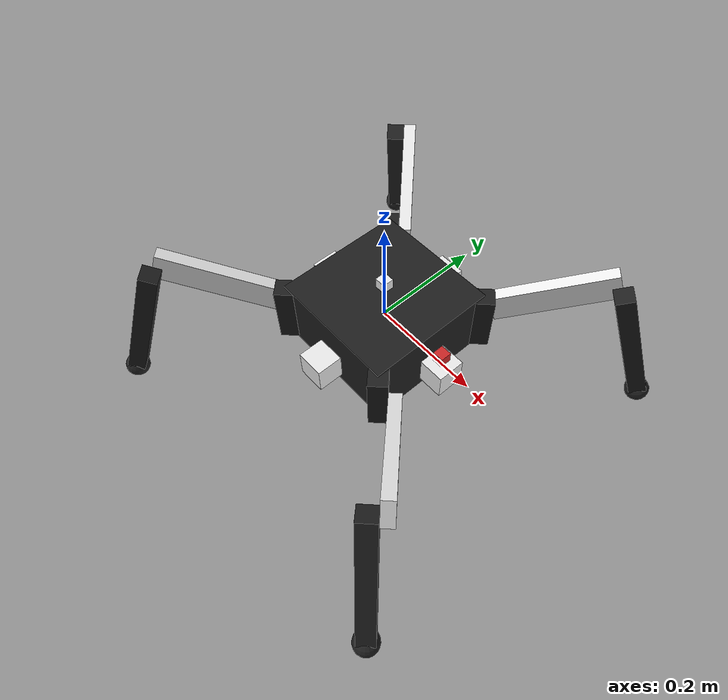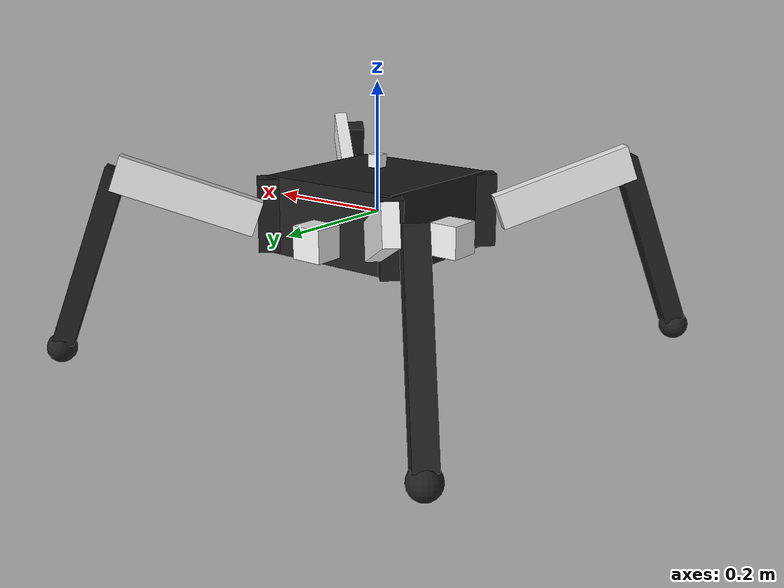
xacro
<?xml version="1.0"?>

<robot name="$(arg ugv_name)" xmlns:xacro="http://ros.org/wiki/xacro">
    <xacro:include filename="$(find simulator)/urdf/component_snippets.xacro" />
    <!-- Instantiate firefly "mechanics" -->
    <xacro:include filename="$(find simulator)/urdf/quadruped.xacro" />

    <xacro:camera_macro
    namespace=""
    parent_link="base_link"
    camera_suffix="front"
    frame_rate="30"
    horizontal_fov="1.57"
    image_width="640"
    image_height="480"
    image_format="R8G8B8"
    min_distance="0.1"
    max_distance="0"
    noise_mean="0.0"
    noise_stddev="0.0"
    enable_visual="true">
    <box size="0.02 0.02 0.02"/>
    <origin xyz="0.14 0.0 0.02" rpy="0.0 0.0 0.0" />
    </xacro:camera_macro>

    <xacro:imu_macro
    namespace=""
    imu_suffix=""
    parent_link="base_link"
    imu_size="0.02"
    imu_mass="0.03"
    imu_topic="imu">
    <origin xyz="0.0 0.0 0.08" rpy="0.0 0.0 0.0"/>
    </xacro:imu_macro>

    <xacro:lidar_macro
    namespace=""
    lidar_suffix="front"
    parent_link="base_link"
    lidar_size="0.05"
    lidar_mass="0.03"
    lidar_topic="lidar/front">
    <origin xyz="0.14 0 -0.02" rpy="0.0 0.0 0.0"/>
    </xacro:lidar_macro>

    <xacro:lidar_macro
    namespace=""
    lidar_suffix="left"
    parent_link="base_link"
    lidar_size="0.05"
    lidar_mass="0.03"
    lidar_topic="lidar/left">
    <origin xyz="0.0 0.14 -0.02" rpy="0.0 0.0 1.57"/>
    </xacro:lidar_macro>

    <xacro:lidar_macro
    namespace=""
    lidar_suffix="back"
    parent_link="base_link"
    lidar_size="0.05"
    lidar_mass="0.03"
    lidar_topic="lidar/back">
    <origin xyz="-0.14 0.0 -0.02" rpy="0.0 0.0 3.14"/>
    </xacro:lidar_macro>

    <xacro:lidar_macro
    namespace=""
    lidar_suffix="right"
    parent_link="base_link"
    lidar_size="0.05"
    lidar_mass="0.03"
    lidar_topic="lidar/right">
    <origin xyz="0.0 -0.14 -0.02" rpy="0.0 0.0 -1.57"/>
    </xacro:lidar_macro>

</robot>

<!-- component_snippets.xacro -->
<robot xmlns:xacro="http://ros.org/wiki/xacro">
    <xacro:property name="pi" value="3.14159265359" />

    <xacro:macro name="camera_macro"
    params="namespace parent_link camera_suffix frame_rate
      horizontal_fov image_width image_height image_format min_distance
      max_distance noise_mean noise_stddev enable_visual *geometry *origin">
    <link name="${namespace}/camera_${camera_suffix}_link">
      <collision>
        <origin xyz="0 0 0" rpy="0 0 0" />
        <geometry>
          <xacro:insert_block name="geometry" />
        </geometry>
      </collision>
      <xacro:if value="${enable_visual}">
        <visual>
          <origin xyz="0 0 0" rpy="0 ${pi/2} 0" />
          <geometry>
            <xacro:insert_block name="geometry" />
          </geometry>
          <material name="red" />
        </visual>
      </xacro:if>
      <inertial>
        <mass value="1e-5" />
        <origin xyz="0 0 0" rpy="0 0 0" />
        <inertia ixx="1e-6" ixy="0" ixz="0" iyy="1e-6" iyz="0" izz="1e-6" />
      </inertial>
    </link>
    <joint name="${namespace}/camera_${camera_suffix}_joint" type="fixed">
      <xacro:insert_block name="origin" />
      <parent link="${parent_link}" />
      <child link="${namespace}/camera_${camera_suffix}_link" />
    </joint>
    <link name="${namespace}/camera_${camera_suffix}_optical_link" />
    <joint name="${namespace}/camera_${camera_suffix}_optical_joint" type="fixed" >
      <origin xyz="0 0 0" rpy="${-pi/2} 0 ${-pi/2}" />
      <parent link="${namespace}/camera_${camera_suffix}_link" />
      <child link="${namespace}/camera_${camera_suffix}_optical_link" />
    </joint>
    <gazebo reference="${namespace}/camera_${camera_suffix}_link">
      <sensor type="camera" name="${namespace}_camera_${camera_suffix}">
        <update_rate>${frame_rate}</update_rate>
        <camera name="head">
          <horizontal_fov>${horizontal_fov}</horizontal_fov>
          <image>
            <width>${image_width}</width>
            <height>${image_height}</height>
            <format>${image_format}</format>
          </image>
          <clip>
            <near>${min_distance}</near>
            <far>${max_distance}</far>
          </clip>
          <noise>
            <type>gaussian</type>
            <!-- Noise is sampled independently per pixel on each frame.
                 That pixel's noise value is added to each of its color
                 channels, which at that point lie in the range [0,1]. -->
            <mean>${noise_mean}</mean>
            <stddev>${noise_stddev}</stddev>
          </noise>
        </camera>
        <plugin name="${namespace}_camera_${camera_suffix}_controller" filename="libgazebo_ros_camera.so">
          <robotNamespace>${namespace}</robotNamespace>
          <alwaysOn>true</alwaysOn>
          <updateRate>${frame_rate}</updateRate>
          <cameraName>camera_${camera_suffix}</cameraName>
          <imageTopicName>image_raw</imageTopicName>
          <cameraInfoTopicName>camera_info</cameraInfoTopicName>
          <frameName>camera_${camera_suffix}_link</frameName>
          <hackBaseline>0.0</hackBaseline>
          <distortionK1>0.0</distortionK1>
          <distortionK2>0.0</distortionK2>
          <distortionK3>0.0</distortionK3>
          <distortionT1>0.0</distortionT1>
          <distortionT2>0.0</distortionT2>
        </plugin>
      </sensor>
    </gazebo>
    </xacro:macro>

    <xacro:macro name="imu_macro"
    params="namespace imu_suffix parent_link imu_size imu_mass imu_topic *origin">
        <link name="${namespace}/imu${imu_suffix}_link">
            <visual>
                <geometry>
                    <box size="${imu_size} ${imu_size} ${imu_size}"/>
                </geometry>
                <material name="white"/>
                </visual>
                <collision>
                <geometry>
                    <box size="${imu_size} ${imu_size} ${imu_size}"/>
                </geometry>
                </collision>
                <xacro:box_inertial mass="${imu_mass}" width="${imu_size}" depth="${imu_size}"/>
        </link>
        <joint name="${namespace}/imu${imu_suffix}_joint" type="fixed">
            <xacro:insert_block name="origin" />
            <parent link="${parent_link}" />
            <child link="${namespace}/imu${imu_suffix}_link" />
        </joint>
        <gazebo reference="${namespace}/imu${imu_suffix}_link">
            <material>Gazebo/White</material>
            <gravity>true</gravity>
            <sensor name="imu_sensor" type="imu">
            <always_on>true</always_on>
            <update_rate>100</update_rate>
            <visualize>true</visualize>
            <topic>__default_topic__</topic>
            <plugin filename="libgazebo_ros_imu_sensor.so" name="imu_plugin">
                <topicName>${imu_topic}</topicName>
                <bodyName>${namespace}/imu${imu_suffix}_link</bodyName>
                <updateRateHZ>100.0</updateRateHZ>
                <gaussianNoise>0.0</gaussianNoise>
                <xyzOffset>0 0 0</xyzOffset>
                <rpyOffset>0 0 0</rpyOffset>
                <frameName>${namespace}/imu${imu_suffix}_link</frameName>
            </plugin>
            <pose>0 0 0 0 0 0</pose>
            </sensor>
        </gazebo>
        <gazebo reference="${namespace}/imu${imu_suffix}_joint">
            <provideFeedback>true</provideFeedback>
            <disableFixedJointLumping>true</disableFixedJointLumping>
        </gazebo>
    </xacro:macro>

    <xacro:macro name="lidar_macro"
    params="namespace lidar_suffix parent_link lidar_size lidar_mass lidar_topic *origin">
    <link name="${namespace}/lidar_${lidar_suffix}_link">
      <visual>
          <geometry>
              <box size="${lidar_size} ${lidar_size} ${lidar_size}"/>
          </geometry>
          <material name="white"/>
          </visual>
          <collision>
          <geometry>
              <box size="${lidar_size} ${lidar_size} ${lidar_size}"/>
          </geometry>
          </collision>
          <xacro:box_inertial mass="${lidar_mass}" width="${lidar_size}" depth="${lidar_size}"/>
    </link>
    <joint name="${namespace}/lidar_${lidar_suffix}_joint" type="fixed">
      <xacro:insert_block name="origin" />
      <parent link="${parent_link}" />
      <child link="${namespace}/lidar_${lidar_suffix}_link" />
    </joint>
    <gazebo reference="${namespace}/lidar_${lidar_suffix}_link">
      <sensor type="gpu_ray" name="hokuyo_sensor">
        <pose>0 0 0 0 0 0</pose>
        <visualize>false</visualize>
        <update_rate>40</update_rate>
        <material>Gazebo/White</material>
        <gravity>true</gravity>
        <topic>__default_topic__</topic>
        <ray>
          <scan>
            <horizontal>
              <samples>720</samples>
              <resolution>1</resolution>
              <min_angle>-0.86</min_angle>
              <max_angle>0.86</max_angle>
            </horizontal>
          </scan>
          <range>
            <min>0.10</min>
            <max>10.0</max>
            <resolution>0.01</resolution>
          </range>
          <noise>
            <type>gaussian</type>
            <mean>0.0</mean>
            <stddev>0.01</stddev>
          </noise>
        </ray>
        <plugin name="gazebo_ros_head_hokuyo_controller" filename="libgazebo_ros_gpu_laser.so">
          <topicName>${lidar_topic}</topicName>
          <frameName>${namespace}/lidar_${lidar_suffix}_link</frameName>
        </plugin>
      </sensor>
    </gazebo>
    <gazebo reference="${namespace}/lidar_${lidar_suffix}_joint">
      <provideFeedback>true</provideFeedback>
      <disableFixedJointLumping>true</disableFixedJointLumping>
    </gazebo>
    </xacro:macro>

</robot>

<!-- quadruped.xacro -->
<robot name="$(arg namespace)" xmlns:xacro="http://ros.org/wiki/xacro">
    <xacro:property name="namespace" value="$(arg namespace)" />
    <gazebo>
        <plugin name="gazebo_ros_control" filename="libgazebo_ros_control.so"/>
    </gazebo>

    <xacro:property name="scaling_factor" value="2.2" />
    <!--height:z width:y width:x -->
    <xacro:property name="body_width" value="${scaling_factor*0.108}" />
    <xacro:property name="body_height" value="${scaling_factor*0.055}" />
    <xacro:property name="body_mass" value="${(scaling_factor**3)*0.4}" />

    <xacro:property name="imu_size" value="${scaling_factor*0.02}" />
    <xacro:property name="imu_mass" value="${(scaling_factor**3)*0.05}" />

    <!--height:z width:y depth:x -->
    <xacro:property name="leg1_height" value="${scaling_factor*0.13}" />
    <xacro:property name="leg1_width" value="${scaling_factor*0.015}" />
    <xacro:property name="leg1_depth" value="${scaling_factor*0.015}" />
    <xacro:property name="leg1_mass" value="${(scaling_factor**3)*0.8}" />
    <xacro:property name="leg1_joint_low" value="${-pi*2.0/18.0}" />
    <xacro:property name="leg1_joint_high" value="${pi*2.0/18.0}" />

    <xacro:property name="leg2_height" value="${scaling_factor*0.025}" />
    <xacro:property name="leg2_width" value="${scaling_factor*0.01}" />
    <xacro:property name="leg2_depth" value="${scaling_factor*0.1}" />
    <xacro:property name="leg2_mass" value="${(scaling_factor**3)*0.05}" />
    <xacro:property name="leg2_joint_low" value="${-pi*2.0/18.0}" />
    <xacro:property name="leg2_joint_high" value="${pi*2.0/18.0}" />
    <xacro:property name="leg2_init_pitch" value="${pi*16.0/18.0}" />

    <xacro:property name="leg3_height" value="${scaling_factor*0.052}" />
    <xacro:property name="leg3_width" value="${scaling_factor*0.015}" />
    <xacro:property name="leg3_depth" value="${scaling_factor*0.015}" />
    <xacro:property name="leg3_mass" value="${(scaling_factor**3)*0.1}" />
    <xacro:property name="leg3_joint_low" value="${-pi*2.0/18.0}" />
    <xacro:property name="leg3_joint_high" value="${pi*2.0/18.0}" />

    <xacro:property name="leg_tip_mass" value="${(scaling_factor**3)*0.02}" />

    <xacro:property name="servo_vel" value="4.0" />
    <xacro:property name="servo_effort_limit" value="50.0" />

    <xacro:macro name="box_inertial" params="mass width depth">
        <inertial>
            <mass value="${mass}" />
            <inertia ixx="${mass*(width*width+depth*depth)/12.0}" ixy="0.0" ixz="0.0" iyy="${mass*(width*width+depth*depth)/12.0}" iyz="0.0" izz="${mass*(width*width+depth*depth)/12.0}" />
        </inertial>
    </xacro:macro>

    <xacro:macro name="sphere_inertial" params="mass radius">
        <inertial>
            <mass value="${mass}" />
            <inertia ixx="0.1" ixy="0.0" ixz="0.0" iyy="0.1" iyz="0.0" izz="0.1"/>
        </inertial>
    </xacro:macro>

    <link name="dummy_link">
        <visual>
        <geometry>
            <box size="0.01 0.01 0.01"/>
        </geometry>
        <material name="black"/>
        </visual>
        <inertial>
        <mass value="0.01" />
        <inertia ixx="0.00001" ixy="0.0" ixz="0.0" iyy="0.00001" iyz="0.0" izz="0.00001" />
        </inertial>
        <gazebo reference="dummy_link">
        </gazebo>
    </link>

    <link name="base_link">
        <visual>
        <geometry>
            <box size="${body_width} ${body_width} ${body_height}"/>
        </geometry>
        <material name="black"/>
        </visual>
        <collision>
        <geometry>
            <box size="${body_width} ${body_width} ${body_height}"/>
        </geometry>
        </collision>
        <xacro:box_inertial mass="${body_mass}" width="${body_width}" depth="${body_width}"/>
    </link>
    <joint name="dummy_base_joint" type="fixed">
        <parent link="dummy_link"/>
        <child link="base_link"/>
        <origin xyz="0 0 0" rpy="0 0 0"/>
    </joint>
    <gazebo reference="base_link">
        <mu1>100000.0</mu1>
        <mu2>100000.0</mu2>
        <material>Gazebo/Black</material>
    </gazebo>
    <gazebo reference="dummy_base_joint">
        <provideFeedback>true</provideFeedback>
        <disableFixedJointLumping>true</disableFixedJointLumping>
    </gazebo>

    <xacro:macro name="leg_tip" params="prefix suffix reflect_right">
        <link name="${prefix}_${suffix}_leg_tip">
        <visual>
            <origin xyz="0 0 0" rpy="0 0 0" />
            <geometry>
            <sphere radius="${leg1_depth*1.41/2.0}"/>
            </geometry>
            <material name="black"/>
        </visual>
        <collision>
            <origin xyz="0 0 0" rpy="0 0 0" />
            <geometry>
            <sphere radius="${leg1_depth/2.0}"/>
            </geometry>
        </collision>
        <xacro:sphere_inertial mass="${leg_tip_mass}" radius="${leg1_depth/2.0}"/>
        </link>
        <joint name="${prefix}_${suffix}_leg_tip_joint" type="fixed">
        <parent link="${prefix}_${suffix}_leg1"/>
        <child link="${prefix}_${suffix}_leg_tip"/>
        <origin xyz="0 ${-reflect_right*leg1_width/2.0} ${-leg1_height-leg1_depth*1.41/4.0}" rpy="0 0 0"/>
        </joint>
        <gazebo reference="${prefix}_${suffix}_leg_tip">
        <minDepth>0.0002</minDepth>
        <collision name="${prefix}_${suffix}_leg_tip_collision_1">
            <geometry>
            <sphere>
                <radius>${leg1_depth/2.0}</radius>
            </sphere>
            </geometry>
            <surface>
            <friction>
                <ode>
                <mu>100000.0</mu>
                <mu2>100000.0</mu2>
                </ode>
                <torsional>
                <coefficient>1000000</coefficient>
                <use_patch_radius>true</use_patch_radius>
                <surface_radius>${leg1_depth/2.0}</surface_radius>
                <patch_radius>${leg1_depth/2.0}</patch_radius>
                </torsional>
            </friction>
            </surface>
        </collision>
        <material>Gazebo/Black</material>
        </gazebo>
        <gazebo reference="${prefix}_${suffix}_leg_tip_joint">
        <provideFeedback>true</provideFeedback>
        <disableFixedJointLumping>true</disableFixedJointLumping>
        </gazebo>
    </xacro:macro>

    <xacro:macro name="leg1" params="prefix suffix reflect_right">
        <link name="${prefix}_${suffix}_leg1">
        <visual>
            <origin xyz="0 ${-reflect_right*leg1_width/2.0} ${-leg1_height/2.0}" rpy="0 0 0" />
            <geometry>
            <box size="${leg1_depth} ${leg1_width} ${leg1_height}"/>
            </geometry>
            <material name="black"/>
        </visual>
        <collision>
            <origin xyz="0 ${-reflect_right*leg1_width/2.0} ${-leg1_height/2.0}" rpy="0 0 0" />
            <geometry>
            <box size="${leg1_depth} ${leg1_width} ${leg1_height}"/>
            </geometry>
        </collision>
        <xacro:box_inertial mass="${leg1_mass}" width="${leg1_width}" depth="${leg1_height}"/>
        </link>
        <joint name="${prefix}_${suffix}_leg1_joint" type="revolute">
        <axis xyz="0 1 0" />
        <parent link="${prefix}_${suffix}_leg2"/>
        <child link="${prefix}_${suffix}_leg1"/>
        <origin xyz="${leg2_depth*cos(pi-leg2_init_pitch)} 0 ${leg2_depth*sin(pi-leg2_init_pitch)}" rpy="0 ${-pi+leg2_init_pitch} 0"/>
        <limit lower="${leg1_joint_low}" upper="${leg1_joint_high}" effort="${servo_effort_limit}" velocity="${servo_vel}"/>
        <dynamics friction="0.0" />
        </joint>
        <gazebo reference="${prefix}_${suffix}_leg1">
        <mu1>100000.0</mu1>
        <mu2>100000.0</mu2>
        <material>Gazebo/White</material>
        </gazebo>
    </xacro:macro>

    <xacro:macro name="leg2" params="prefix suffix reflect_right">
        <link name="${prefix}_${suffix}_leg2">
        <visual>
            <origin xyz="${leg2_depth*cos(pi-leg2_init_pitch)/2.0} ${reflect_right*leg2_width/2.0} ${leg2_depth*sin(pi-leg2_init_pitch)/2.0}" rpy="0 ${leg2_init_pitch} 0" />
            <geometry>
            <box size="${leg2_depth} ${leg2_width} ${leg2_height}"/>
            </geometry>
            <material name="white"/>
        </visual>
        <collision>
            <origin xyz="${leg2_depth*cos(pi-leg2_init_pitch)/2.0} ${reflect_right*leg2_width/2.0} ${leg2_depth*sin(pi-leg2_init_pitch)/2.0}" rpy="0 ${leg2_init_pitch} 0" />
            <geometry>
            <box size="${leg2_depth} ${leg2_width} ${leg2_height}"/>
            </geometry>
        </collision>
        <xacro:box_inertial mass="${leg2_mass}" width="${leg2_width}" depth="${leg2_depth}"/>
        </link>
        <joint name="${prefix}_${suffix}_leg2_joint" type="revolute">
        <axis xyz="0 1 0" rpy="0 0 0" />
        <parent link="${prefix}_${suffix}_leg3"/>
        <child link="${prefix}_${suffix}_leg2"/>
        <origin xyz="${leg3_depth/2.0} ${reflect_right*leg3_width/2.0} 0" />
        <limit lower="${leg2_joint_low}" upper="${leg2_joint_high}" effort="${servo_effort_limit}" velocity="${servo_vel}"/>
        <dynamics friction="0.0" />
        </joint>
        <gazebo reference="${prefix}_${suffix}_leg2">
        <mu1>100000.0</mu1>
        <mu2>100000.0</mu2>
        <material>Gazebo/Black</material>
        </gazebo>
    </xacro:macro>

    <xacro:macro name="leg3" params="prefix suffix reflect_front reflect_right">
        <link name="${prefix}_${suffix}_leg3">
        <visual>
            <origin xyz="0 0 0" rpy="0 0 0" />
            <geometry>
            <box size="${leg3_depth} ${leg3_width} ${leg3_height}"/>
            </geometry>
            <material name="black"/>
        </visual>
        <collision>
            <origin xyz="0 0 0" rpy="0 0 0" />
            <geometry>
            <box size="${leg3_depth} ${leg3_width} ${leg3_height}"/>
            </geometry>
        </collision>
        <xacro:box_inertial mass="${leg3_mass}" width="${leg3_width}" depth="${leg3_depth}"/>
        </link>
        <joint name="${prefix}_${suffix}_leg3_joint" type="revolute">
        <axis xyz="0 0 1"/>
        <parent link="base_link"/>
        <child link="${prefix}_${suffix}_leg3"/>
        <origin xyz="${reflect_right*body_width/2.0} ${reflect_front*body_width/2.0} 0" rpy="0 0 ${reflect_front*pi/2.0 - reflect_front*reflect_right*pi/4.0}"/>
        <limit lower="${leg3_joint_low}" upper="${leg3_joint_high}" effort="${servo_effort_limit}" velocity="${servo_vel}"/>
        <dynamics friction="0.0" />
        </joint>
        <gazebo reference="${prefix}_${suffix}_leg3">
        <mu1>100000.0</mu1>
        <mu2>100000.0</mu2>
        <material>Gazebo/White</material>
        </gazebo>
    </xacro:macro>

    <xacro:macro name="leg" params="prefix suffix reflect_front reflect_right">
        <xacro:leg3 prefix="${prefix}" suffix="${suffix}" reflect_front="${reflect_front}" reflect_right="${reflect_right}"/>
        <xacro:leg2 prefix="${prefix}" suffix="${suffix}" reflect_right="${reflect_right}"/>
        <xacro:leg1 prefix="${prefix}" suffix="${suffix}" reflect_right="${reflect_right}"/>
        <xacro:leg_tip prefix="${prefix}" suffix="${suffix}" reflect_right="${reflect_right}"/>
    </xacro:macro>

    <xacro:leg prefix="front" suffix="right" reflect_front="1.0" reflect_right="1.0"/>
    <xacro:leg prefix="front" suffix="left" reflect_front="1.0" reflect_right="-1.0"/>
    <xacro:leg prefix="back" suffix="right" reflect_front="-1.0" reflect_right="1.0"/>
    <xacro:leg prefix="back" suffix="left" reflect_front="-1.0" reflect_right="-1.0"/>

  <!-- gazebo ros joint state pub plugin -->
  <gazebo>
    <plugin name="joint_state_publisher" filename="libgazebo_ros_joint_state_publisher.so">
      <jointName>front_right_leg1_joint, front_right_leg2_joint, front_right_leg3_joint, front_left_leg1_joint, front_left_leg2_joint, front_left_leg3_joint, back_right_leg1_joint, back_right_leg2_joint, back_right_leg3_joint, back_left_leg1_joint, back_left_leg2_joint, back_left_leg3_joint</jointName>
      <updateRate>60.0</updateRate>
      <alwaysOn>true</alwaysOn>
    </plugin>
  </gazebo>

    <!-- transmissions -->
    <xacro:macro name="trans" params="num front_back right_left leg">
        <transmission name="tran${num}">
        <joint name="${front_back}_${right_left}_${leg}_joint">
            <hardwareInterface>hardware_interface/EffortJointInterface</hardwareInterface>
        </joint>
        <type>transmission_interface/SimpleTransmission</type>
        <actuator name="servo${num}">
            <hardwareInterface>hardware_interface/EffortJointInterface</hardwareInterface>
            <mechanicalReduction>1</mechanicalReduction>
        </actuator>
        </transmission>
    </xacro:macro>

    <xacro:trans num="1" front_back="front" right_left="right" leg="leg1"/>
    <xacro:trans num="2" front_back="front" right_left="right" leg="leg2"/>
    <xacro:trans num="3" front_back="front" right_left="right" leg="leg3"/>
    <xacro:trans num="4" front_back="front" right_left="left" leg="leg1"/>
    <xacro:trans num="5" front_back="front" right_left="left" leg="leg2"/>
    <xacro:trans num="6" front_back="front" right_left="left" leg="leg3"/>
    <xacro:trans num="7" front_back="back" right_left="right" leg="leg1"/>
    <xacro:trans num="8" front_back="back" right_left="right" leg="leg2"/>
    <xacro:trans num="9" front_back="back" right_left="right" leg="leg3"/>
    <xacro:trans num="10" front_back="back" right_left="left" leg="leg1"/>
    <xacro:trans num="11" front_back="back" right_left="left" leg="leg2"/>
    <xacro:trans num="12" front_back="back" right_left="left" leg="leg3"/>

</robot>
